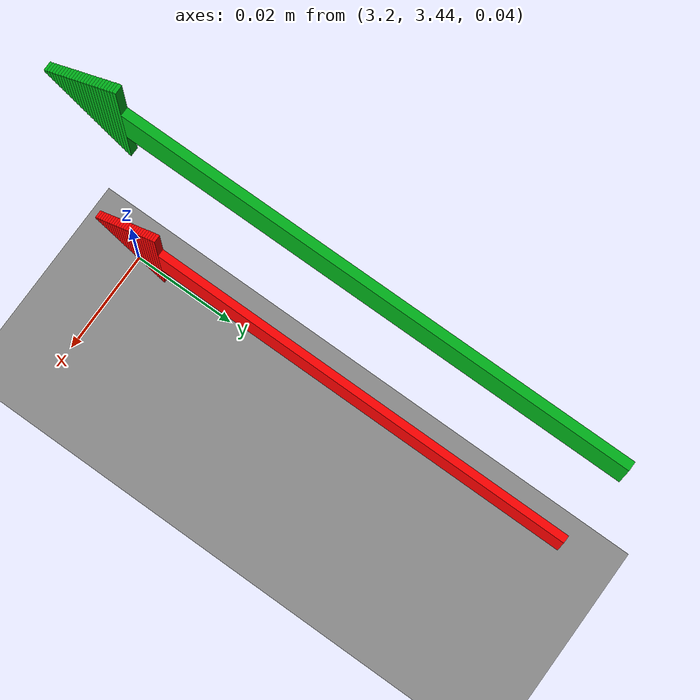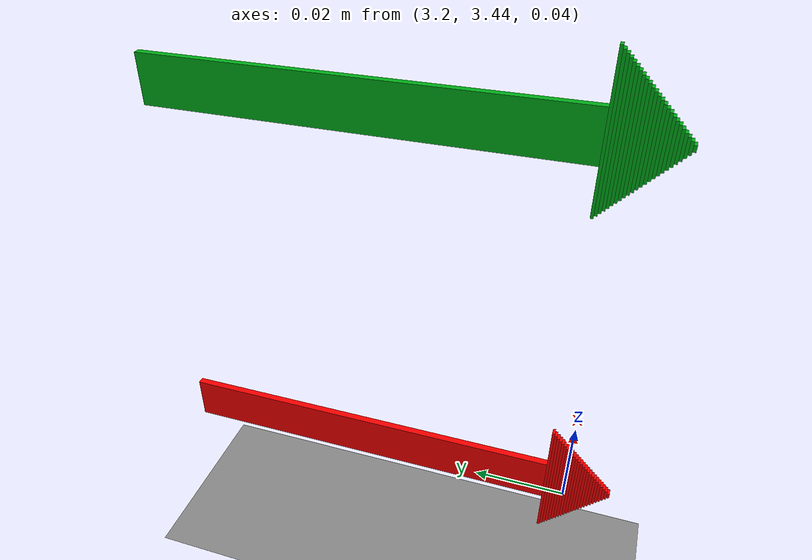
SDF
<sdf version="1.9">
 <world name="ros2_world">
  <model name="ground_plane">
   <static>true</static>
   <link name="link">
    <collision name="collision">
     <geometry><plane><normal>0 0 1</normal><size>30 30</size></plane></geometry>
    </collision>
    <visual name="visual">
     <geometry><plane><normal>0 0 1</normal><size>30 30</size></plane></geometry>
     <material><ambient>0.55 0.55 0.55 1</ambient><diffuse>0.55 0.55 0.55 1</diffuse></material>
    </visual>
   </link>
  </model>
  <model name="flechas">
   <static>true</static>
   <link name="flecha_4">
    <pose>3.19875 3.48 0.125 0 0 -1.5708</pose>
    <visual name="p0">
     <pose>-0.007 0 0 0 0 0</pose>
     <geometry><box><size>0.085 0.0015 0.01</size></box></geometry>
     <material><ambient>0 0.7 0.1 1</ambient><diffuse>0 0.7 0.1 1</diffuse></material>
    </visual>
    <visual name="p1">
     <pose>0.03578 0 0 0 0 0</pose>
     <geometry><box><size>0.00056 0.0015 0.029</size></box></geometry>
     <material><ambient>0 0.7 0.1 1</ambient><diffuse>0 0.7 0.1 1</diffuse></material>
    </visual>
    <visual name="p2">
     <pose>0.03634 0 0 0 0 0</pose>
     <geometry><box><size>0.00056 0.0015 0.02784</size></box></geometry>
     <material><ambient>0 0.7 0.1 1</ambient><diffuse>0 0.7 0.1 1</diffuse></material>
    </visual>
    <visual name="p3">
     <pose>0.0369 0 0 0 0 0</pose>
     <geometry><box><size>0.00056 0.0015 0.02668</size></box></geometry>
     <material><ambient>0 0.7 0.1 1</ambient><diffuse>0 0.7 0.1 1</diffuse></material>
    </visual>
    <visual name="p4">
     <pose>0.03746 0 0 0 0 0</pose>
     <geometry><box><size>0.00056 0.0015 0.02552</size></box></geometry>
     <material><ambient>0 0.7 0.1 1</ambient><diffuse>0 0.7 0.1 1</diffuse></material>
    </visual>
    <visual name="p5">
     <pose>0.03802 0 0 0 0 0</pose>
     <geometry><box><size>0.00056 0.0015 0.02436</size></box></geometry>
     <material><ambient>0 0.7 0.1 1</ambient><diffuse>0 0.7 0.1 1</diffuse></material>
    </visual>
    <visual name="p6">
     <pose>0.03858 0 0 0 0 0</pose>
     <geometry><box><size>0.00056 0.0015 0.0232</size></box></geometry>
     <material><ambient>0 0.7 0.1 1</ambient><diffuse>0 0.7 0.1 1</diffuse></material>
    </visual>
    <visual name="p7">
     <pose>0.03914 0 0 0 0 0</pose>
     <geometry><box><size>0.00056 0.0015 0.02204</size></box></geometry>
     <material><ambient>0 0.7 0.1 1</ambient><diffuse>0 0.7 0.1 1</diffuse></material>
    </visual>
    <visual name="p8">
     <pose>0.0397 0 0 0 0 0</pose>
     <geometry><box><size>0.00056 0.0015 0.02088</size></box></geometry>
     <material><ambient>0 0.7 0.1 1</ambient><diffuse>0 0.7 0.1 1</diffuse></material>
    </visual>
    <visual name="p9">
     <pose>0.04026 0 0 0 0 0</pose>
     <geometry><box><size>0.00056 0.0015 0.01972</size></box></geometry>
     <material><ambient>0 0.7 0.1 1</ambient><diffuse>0 0.7 0.1 1</diffuse></material>
    </visual>
    <visual name="p10">
     <pose>0.04082 0 0 0 0 0</pose>
     <geometry><box><size>0.00056 0.0015 0.01856</size></box></geometry>
     <material><ambient>0 0.7 0.1 1</ambient><diffuse>0 0.7 0.1 1</diffuse></material>
    </visual>
    <visual name="p11">
     <pose>0.04138 0 0 0 0 0</pose>
     <geometry><box><size>0.00056 0.0015 0.0174</size></box></geometry>
     <material><ambient>0 0.7 0.1 1</ambient><diffuse>0 0.7 0.1 1</diffuse></material>
    </visual>
    <visual name="p12">
     <pose>0.04194 0 0 0 0 0</pose>
     <geometry><box><size>0.00056 0.0015 0.01624</size></box></geometry>
     <material><ambient>0 0.7 0.1 1</ambient><diffuse>0 0.7 0.1 1</diffuse></material>
    </visual>
    <visual name="p13">
     <pose>0.0425 0 0 0 0 0</pose>
     <geometry><box><size>0.00056 0.0015 0.01508</size></box></geometry>
     <material><ambient>0 0.7 0.1 1</ambient><diffuse>0 0.7 0.1 1</diffuse></material>
    </visual>
    <visual name="p14">
     <pose>0.04306 0 0 0 0 0</pose>
     <geometry><box><size>0.00056 0.0015 0.01392</size></box></geometry>
     <material><ambient>0 0.7 0.1 1</ambient><diffuse>0 0.7 0.1 1</diffuse></material>
    </visual>
    <visual name="p15">
     <pose>0.04362 0 0 0 0 0</pose>
     <geometry><box><size>0.00056 0.0015 0.01276</size></box></geometry>
     <material><ambient>0 0.7 0.1 1</ambient><diffuse>0 0.7 0.1 1</diffuse></material>
    </visual>
    <visual name="p16">
     <pose>0.04418 0 0 0 0 0</pose>
     <geometry><box><size>0.00056 0.0015 0.0116</size></box></geometry>
     <material><ambient>0 0.7 0.1 1</ambient><diffuse>0 0.7 0.1 1</diffuse></material>
    </visual>
    <visual name="p17">
     <pose>0.04474 0 0 0 0 0</pose>
     <geometry><box><size>0.00056 0.0015 0.01044</size></box></geometry>
     <material><ambient>0 0.7 0.1 1</ambient><diffuse>0 0.7 0.1 1</diffuse></material>
    </visual>
    <visual name="p18">
     <pose>0.0453 0 0 0 0 0</pose>
     <geometry><box><size>0.00056 0.0015 0.00928</size></box></geometry>
     <material><ambient>0 0.7 0.1 1</ambient><diffuse>0 0.7 0.1 1</diffuse></material>
    </visual>
    <visual name="p19">
     <pose>0.04586 0 0 0 0 0</pose>
     <geometry><box><size>0.00056 0.0015 0.00812</size></box></geometry>
     <material><ambient>0 0.7 0.1 1</ambient><diffuse>0 0.7 0.1 1</diffuse></material>
    </visual>
    <visual name="p20">
     <pose>0.04642 0 0 0 0 0</pose>
     <geometry><box><size>0.00056 0.0015 0.00696</size></box></geometry>
     <material><ambient>0 0.7 0.1 1</ambient><diffuse>0 0.7 0.1 1</diffuse></material>
    </visual>
    <visual name="p21">
     <pose>0.04698 0 0 0 0 0</pose>
     <geometry><box><size>0.00056 0.0015 0.0058</size></box></geometry>
     <material><ambient>0 0.7 0.1 1</ambient><diffuse>0 0.7 0.1 1</diffuse></material>
    </visual>
    <visual name="p22">
     <pose>0.04754 0 0 0 0 0</pose>
     <geometry><box><size>0.00056 0.0015 0.00464</size></box></geometry>
     <material><ambient>0 0.7 0.1 1</ambient><diffuse>0 0.7 0.1 1</diffuse></material>
    </visual>
    <visual name="p23">
     <pose>0.0481 0 0 0 0 0</pose>
     <geometry><box><size>0.00056 0.0015 0.00348</size></box></geometry>
     <material><ambient>0 0.7 0.1 1</ambient><diffuse>0 0.7 0.1 1</diffuse></material>
    </visual>
    <visual name="p24">
     <pose>0.04866 0 0 0 0 0</pose>
     <geometry><box><size>0.00056 0.0015 0.00232</size></box></geometry>
     <material><ambient>0 0.7 0.1 1</ambient><diffuse>0 0.7 0.1 1</diffuse></material>
    </visual>
    <visual name="p25">
     <pose>0.04922 0 0 0 0 0</pose>
     <geometry><box><size>0.00056 0.0015 0.00116</size></box></geometry>
     <material><ambient>0 0.7 0.1 1</ambient><diffuse>0 0.7 0.1 1</diffuse></material>
    </visual>
   </link>
   <link name="flecha_5">
    <pose>3.19875 3.48 0.045 0 0 -1.5708</pose>
    <visual name="p0">
     <pose>-0.007 0 0 0 0 0</pose>
     <geometry><box><size>0.085 0.0015 0.01</size></box></geometry>
     <material><ambient>1 0 0 1</ambient><diffuse>1 0 0 1</diffuse></material>
    </visual>
    <visual name="p1">
     <pose>0.03578 0 0 0 0 0</pose>
     <geometry><box><size>0.00056 0.0015 0.029</size></box></geometry>
     <material><ambient>1 0 0 1</ambient><diffuse>1 0 0 1</diffuse></material>
    </visual>
    <visual name="p2">
     <pose>0.03634 0 0 0 0 0</pose>
     <geometry><box><size>0.00056 0.0015 0.02784</size></box></geometry>
     <material><ambient>1 0 0 1</ambient><diffuse>1 0 0 1</diffuse></material>
    </visual>
    <visual name="p3">
     <pose>0.0369 0 0 0 0 0</pose>
     <geometry><box><size>0.00056 0.0015 0.02668</size></box></geometry>
     <material><ambient>1 0 0 1</ambient><diffuse>1 0 0 1</diffuse></material>
    </visual>
    <visual name="p4">
     <pose>0.03746 0 0 0 0 0</pose>
     <geometry><box><size>0.00056 0.0015 0.02552</size></box></geometry>
     <material><ambient>1 0 0 1</ambient><diffuse>1 0 0 1</diffuse></material>
    </visual>
    <visual name="p5">
     <pose>0.03802 0 0 0 0 0</pose>
     <geometry><box><size>0.00056 0.0015 0.02436</size></box></geometry>
     <material><ambient>1 0 0 1</ambient><diffuse>1 0 0 1</diffuse></material>
    </visual>
    <visual name="p6">
     <pose>0.03858 0 0 0 0 0</pose>
     <geometry><box><size>0.00056 0.0015 0.0232</size></box></geometry>
     <material><ambient>1 0 0 1</ambient><diffuse>1 0 0 1</diffuse></material>
    </visual>
    <visual name="p7">
     <pose>0.03914 0 0 0 0 0</pose>
     <geometry><box><size>0.00056 0.0015 0.02204</size></box></geometry>
     <material><ambient>1 0 0 1</ambient><diffuse>1 0 0 1</diffuse></material>
    </visual>
    <visual name="p8">
     <pose>0.0397 0 0 0 0 0</pose>
     <geometry><box><size>0.00056 0.0015 0.02088</size></box></geometry>
     <material><ambient>1 0 0 1</ambient><diffuse>1 0 0 1</diffuse></material>
    </visual>
    <visual name="p9">
     <pose>0.04026 0 0 0 0 0</pose>
     <geometry><box><size>0.00056 0.0015 0.01972</size></box></geometry>
     <material><ambient>1 0 0 1</ambient><diffuse>1 0 0 1</diffuse></material>
    </visual>
    <visual name="p10">
     <pose>0.04082 0 0 0 0 0</pose>
     <geometry><box><size>0.00056 0.0015 0.01856</size></box></geometry>
     <material><ambient>1 0 0 1</ambient><diffuse>1 0 0 1</diffuse></material>
    </visual>
    <visual name="p11">
     <pose>0.04138 0 0 0 0 0</pose>
     <geometry><box><size>0.00056 0.0015 0.0174</size></box></geometry>
     <material><ambient>1 0 0 1</ambient><diffuse>1 0 0 1</diffuse></material>
    </visual>
    <visual name="p12">
     <pose>0.04194 0 0 0 0 0</pose>
     <geometry><box><size>0.00056 0.0015 0.01624</size></box></geometry>
     <material><ambient>1 0 0 1</ambient><diffuse>1 0 0 1</diffuse></material>
    </visual>
    <visual name="p13">
     <pose>0.0425 0 0 0 0 0</pose>
     <geometry><box><size>0.00056 0.0015 0.01508</size></box></geometry>
     <material><ambient>1 0 0 1</ambient><diffuse>1 0 0 1</diffuse></material>
    </visual>
    <visual name="p14">
     <pose>0.04306 0 0 0 0 0</pose>
     <geometry><box><size>0.00056 0.0015 0.01392</size></box></geometry>
     <material><ambient>1 0 0 1</ambient><diffuse>1 0 0 1</diffuse></material>
    </visual>
    <visual name="p15">
     <pose>0.04362 0 0 0 0 0</pose>
     <geometry><box><size>0.00056 0.0015 0.01276</size></box></geometry>
     <material><ambient>1 0 0 1</ambient><diffuse>1 0 0 1</diffuse></material>
    </visual>
    <visual name="p16">
     <pose>0.04418 0 0 0 0 0</pose>
     <geometry><box><size>0.00056 0.0015 0.0116</size></box></geometry>
     <material><ambient>1 0 0 1</ambient><diffuse>1 0 0 1</diffuse></material>
    </visual>
    <visual name="p17">
     <pose>0.04474 0 0 0 0 0</pose>
     <geometry><box><size>0.00056 0.0015 0.01044</size></box></geometry>
     <material><ambient>1 0 0 1</ambient><diffuse>1 0 0 1</diffuse></material>
    </visual>
    <visual name="p18">
     <pose>0.0453 0 0 0 0 0</pose>
     <geometry><box><size>0.00056 0.0015 0.00928</size></box></geometry>
     <material><ambient>1 0 0 1</ambient><diffuse>1 0 0 1</diffuse></material>
    </visual>
    <visual name="p19">
     <pose>0.04586 0 0 0 0 0</pose>
     <geometry><box><size>0.00056 0.0015 0.00812</size></box></geometry>
     <material><ambient>1 0 0 1</ambient><diffuse>1 0 0 1</diffuse></material>
    </visual>
    <visual name="p20">
     <pose>0.04642 0 0 0 0 0</pose>
     <geometry><box><size>0.00056 0.0015 0.00696</size></box></geometry>
     <material><ambient>1 0 0 1</ambient><diffuse>1 0 0 1</diffuse></material>
    </visual>
    <visual name="p21">
     <pose>0.04698 0 0 0 0 0</pose>
     <geometry><box><size>0.00056 0.0015 0.0058</size></box></geometry>
     <material><ambient>1 0 0 1</ambient><diffuse>1 0 0 1</diffuse></material>
    </visual>
    <visual name="p22">
     <pose>0.04754 0 0 0 0 0</pose>
     <geometry><box><size>0.00056 0.0015 0.00464</size></box></geometry>
     <material><ambient>1 0 0 1</ambient><diffuse>1 0 0 1</diffuse></material>
    </visual>
    <visual name="p23">
     <pose>0.0481 0 0 0 0 0</pose>
     <geometry><box><size>0.00056 0.0015 0.00348</size></box></geometry>
     <material><ambient>1 0 0 1</ambient><diffuse>1 0 0 1</diffuse></material>
    </visual>
    <visual name="p24">
     <pose>0.04866 0 0 0 0 0</pose>
     <geometry><box><size>0.00056 0.0015 0.00232</size></box></geometry>
     <material><ambient>1 0 0 1</ambient><diffuse>1 0 0 1</diffuse></material>
    </visual>
    <visual name="p25">
     <pose>0.04922 0 0 0 0 0</pose>
     <geometry><box><size>0.00056 0.0015 0.00116</size></box></geometry>
     <material><ambient>1 0 0 1</ambient><diffuse>1 0 0 1</diffuse></material>
    </visual>
   </link>
  </model>
 </world>
</sdf>
